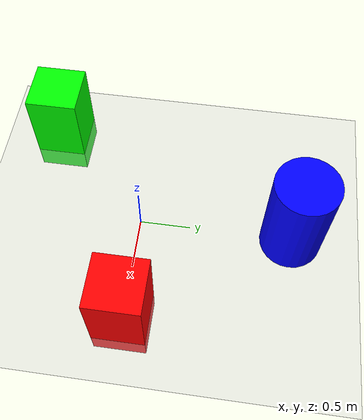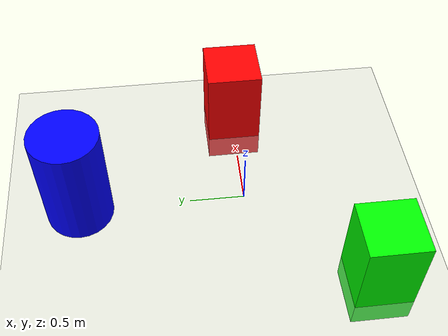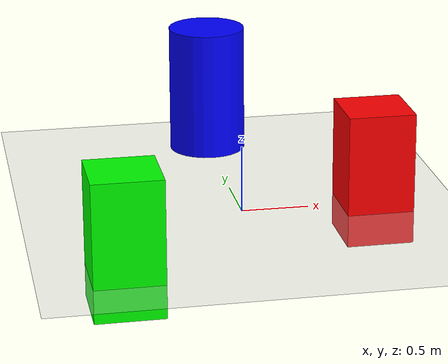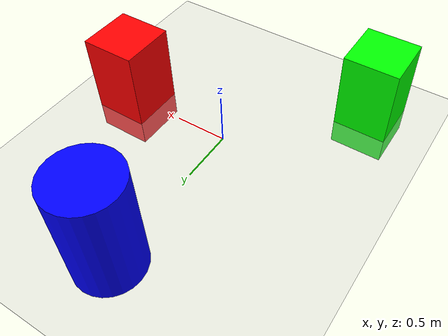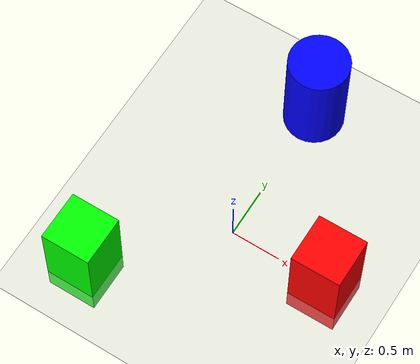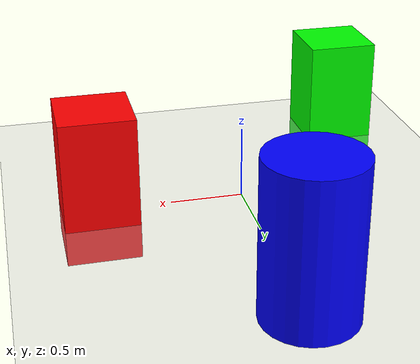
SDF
<?xml version="1.0" ?>
<sdf version="1.8">
    <world name="car_world">
        <physics name="1ms" type="ode">
            <max_step_size>0.01</max_step_size>
            <real_time_factor>1.0</real_time_factor>
        </physics>
        <plugin
            filename="libignition-gazebo-physics-system.so"
            name="ignition::gazebo::systems::Physics">
        </plugin>
        <plugin
            filename="libignition-gazebo-user-commands-system.so"
            name="ignition::gazebo::systems::UserCommands">
        </plugin>
        <plugin
            filename="libignition-gazebo-scene-broadcaster-system.so"
            name="ignition::gazebo::systems::SceneBroadcaster">
        </plugin>

        <light type="directional" name="sun">
            <cast_shadows>false</cast_shadows>
            <pose>0 0 10 0 0 0</pose>
            <diffuse>0.8 0.8 0.8 1</diffuse>
            <specular>0.2 0.2 0.2 1</specular>
            <attenuation>
                <range>1000</range>
                <constant>0.9</constant>
                <linear>0.01</linear>
                <quadratic>0.001</quadratic>
            </attenuation>
            <direction>-0.5 0.1 -0.9</direction>
        </light>

        <model name="ground_plane">
            <static>true</static>
            <link name="link">
                <collision name="collision">
                <geometry>
                    <plane>
                    <normal>0 0 1</normal>
                    <size>100 100</size>
                    </plane>
                </geometry>
                </collision>
                <visual name="visual">
                <geometry>
                    <plane>
                    <normal>0 0 1</normal>
                    <size>100 100</size>
                    </plane>
                </geometry>
                <material>
                    <ambient>0.8 0.8 0.8 1</ambient>
                    <diffuse>0.8 0.8 0.8 1</diffuse>
                    <specular>0.8 0.8 0.8 1</specular>
                </material>
                </visual>
            </link>
        </model>

        <!-- Box obstacle -->
    <model name="box_obstacle1">
      <static>true</static>
      <pose>1 0 0.25 0 0 0</pose>
      <link name="link">
        <collision name="collision">
          <geometry>
            <box>
              <size>0.5 0.5 1.0</size>
            </box>
          </geometry>
        </collision>
        <visual name="visual">
          <geometry>
            <box>
              <size>0.5 0.5 1.0</size>
            </box>
          </geometry>
          <material>
            <ambient>1 0 0 1</ambient>
          </material>
        </visual>
      </link>
    </model>

    <model name="box_obstacle2">
      <static>true</static>
      <pose>-1 -1 0.25 0 0 0</pose>
      <link name="link">
        <collision name="collision">
          <geometry>
            <box>
              <size>0.5 0.5 1.0</size>
            </box>
          </geometry>
        </collision>
        <visual name="visual">
          <geometry>
            <box>
              <size>0.5 0.5 1.0</size>
            </box>
          </geometry>
          <material>
            <ambient>0 1 0 1</ambient>
          </material>
        </visual>
      </link>
    </model>

    <!-- Cylinder obstacle -->
    <model name="cylinder_obstacle">
      <static>true</static>
      <pose>0 1.5 0.5 0 0 0</pose>
      <link name="link">
        <collision name="collision">
          <geometry>
            <cylinder>
              <radius>0.3</radius>
              <length>1.0</length>
            </cylinder>
          </geometry>
        </collision>
        <visual name="visual">
          <geometry>
            <cylinder>
              <radius>0.3</radius>
              <length>1.0</length>
            </cylinder>
          </geometry>
          <material>
            <ambient>0 0 1 1</ambient>
          </material>
        </visual>
      </link>
    </model>

    </world>
</sdf>
